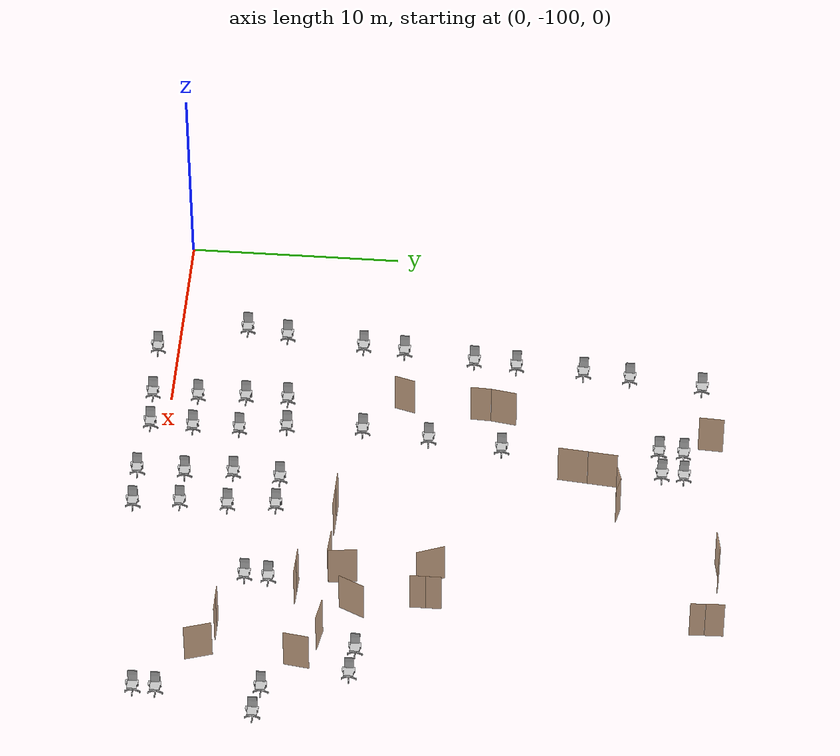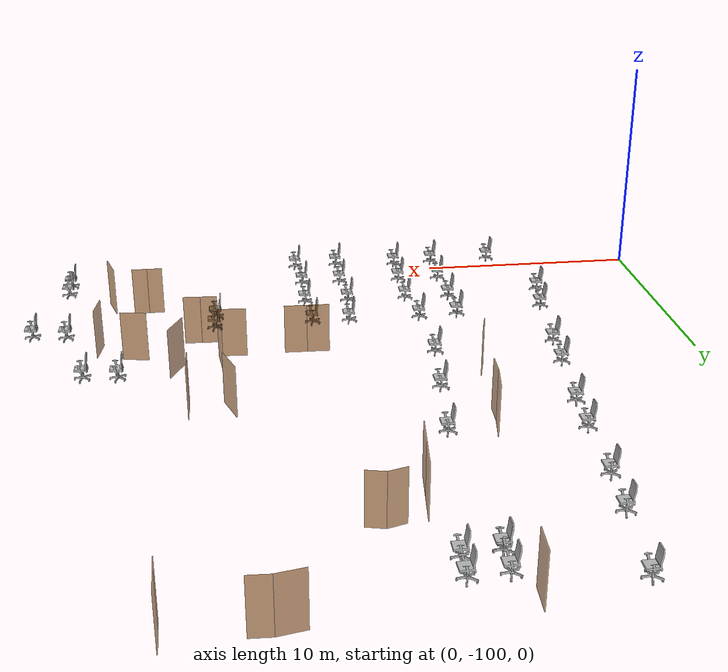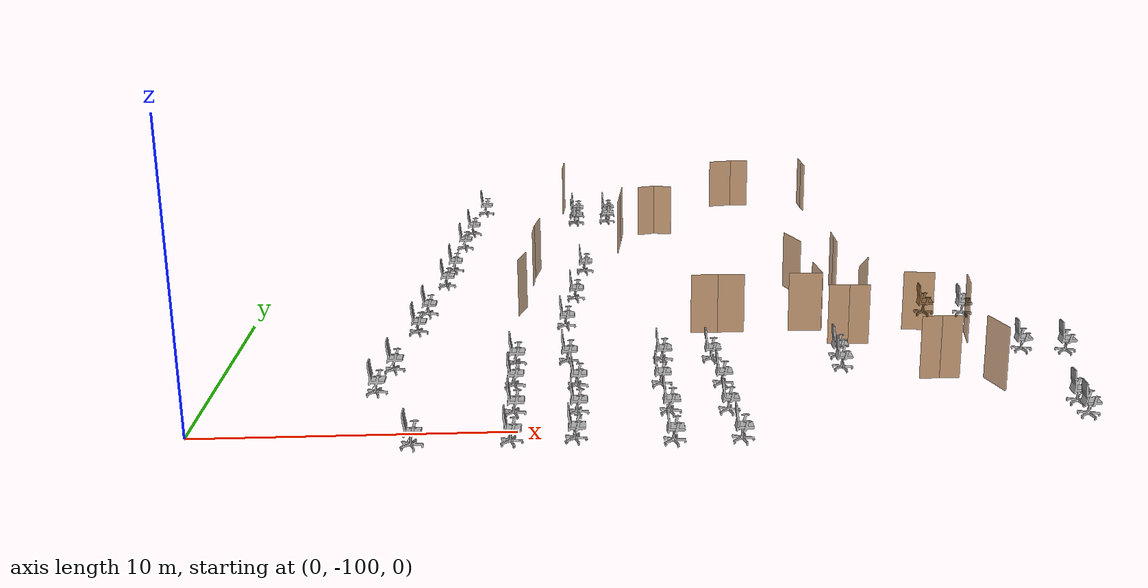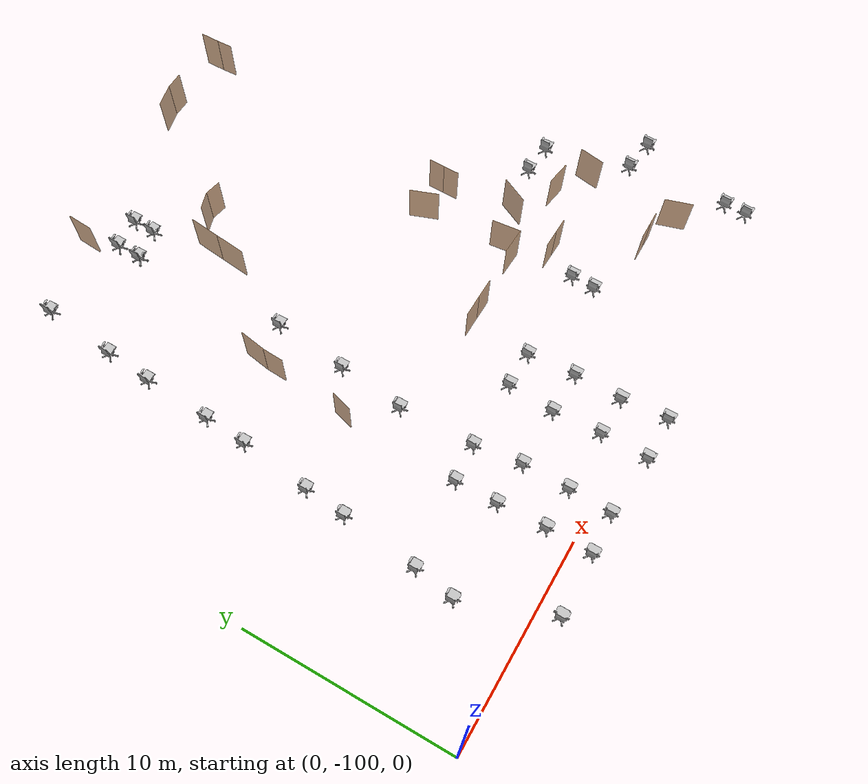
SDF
<sdf version="1.7">
 <world name="world">
  <include><uri>model://sun</uri></include>
  <include>
   <name>OpenRobotics/OfficeChairBlue</name>
   <uri>model://OfficeChairBlue</uri>
   <pose>25.026887193577952 -89.94243627777595 0.0 0 0 1.5708</pose>
   <static>True</static>
  </include>
  <include>
   <name>OpenRobotics/OfficeChairBlue_2</name>
   <uri>model://OfficeChairBlue</uri>
   <pose>26.47516021920883 -90.09647851929083 0.0 0 0 1.5708</pose>
   <static>True</static>
  </include>
  <include>
   <name>OpenRobotics/OfficeChairBlue_3</name>
   <uri>model://OfficeChairBlue</uri>
   <pose>27.569027678309006 -93.99444697364449 0.0 0 0 1.5708</pose>
   <static>True</static>
  </include>
  <include>
   <name>OpenRobotics/OfficeChairBlue_4</name>
   <uri>model://OfficeChairBlue</uri>
   <pose>29.063523231944025 -94.2255596136652 0.0 0 0 1.5708</pose>
   <static>True</static>
  </include>
  <include>
   <name>OpenRobotics/OfficeChairBlue_5</name>
   <uri>model://OfficeChairBlue</uri>
   <pose>21.02198602518487 -94.29513979441344 0.0 0 0 1.5708</pose>
   <static>True</static>
  </include>
  <include>
   <name>OpenRobotics/OfficeChairBlue_6</name>
   <uri>model://OfficeChairBlue</uri>
   <pose>20.958614840735695 -95.39413213934776 0.0 0 0 1.5708</pose>
   <static>True</static>
  </include>
  <include>
   <name>OpenRobotics/OfficeChairBlue_7</name>
   <uri>model://OfficeChairBlue</uri>
   <pose>27.95408400434778 -98.73338948228245 0.0 0 0 1.5708</pose>
   <static>True</static>
  </include>
  <include>
   <name>OpenRobotics/OfficeChairBlue_8</name>
   <uri>model://OfficeChairBlue</uri>
   <pose>27.95408400434778 -99.76891208727079 0.0 0 0 1.5708</pose>
   <static>True</static>
  </include>
  <include>
   <name>OpenRobotics/OfficeChairBlue_9</name>
   <uri>model://OfficeChairBlue</uri>
   <pose>16.91251747467581 -101.03229500088511 0.0 0 0 1.5708</pose>
   <static>True</static>
  </include>
  <include>
   <name>OpenRobotics/OfficeChairBlue_10</name>
   <uri>model://OfficeChairBlue</uri>
   <pose>14.84610437304923 -101.055751209126 0.0 0 0 1.5708</pose>
   <static>True</static>
  </include>
  <include>
   <name>OpenRobotics/OfficeChairBlue_11</name>
   <uri>model://OfficeChairBlue</uri>
   <pose>14.869560581290138 -98.82494753881946 0.0 0 0 1.5708</pose>
   <static>True</static>
  </include>
  <include>
   <name>OpenRobotics/OfficeChairBlue_12</name>
   <uri>model://OfficeChairBlue</uri>
   <pose>16.72467069775492 -98.84840374706036 0.0 0 0 1.5708</pose>
   <static>True</static>
  </include>
  <include>
   <name>OpenRobotics/OfficeChairBlue_13</name>
   <uri>model://OfficeChairBlue</uri>
   <pose>16.74822546149264 -96.61760007675379 0.0 0 0 1.5708</pose>
   <static>True</static>
  </include>
  <include>
   <name>OpenRobotics/OfficeChairBlue_14</name>
   <uri>model://OfficeChairBlue</uri>
   <pose>14.728626220851066 -96.54713289653425 0.0 0 0 1.5708</pose>
   <static>True</static>
  </include>
  <include>
   <name>OpenRobotics/OfficeChairBlue_15</name>
   <uri>model://OfficeChairBlue</uri>
   <pose>16.58383489281266 -94.36324164270951 0.0 0 0 1.5708</pose>
   <static>True</static>
  </include>
  <include>
   <name>OpenRobotics/OfficeChairBlue_16</name>
   <uri>model://OfficeChairBlue</uri>
   <pose>14.893016789531046 -94.33978543446861 0.0 0 0 1.5708</pose>
   <static>True</static>
  </include>
  <include>
   <name>OpenRobotics/OfficeChairBlue_17</name>
   <uri>model://OfficeChairBlue</uri>
   <pose>11.652413498903698 -94.31623067073089 0.0 0 0 1.5708</pose>
   <static>True</static>
  </include>
  <include>
   <name>OpenRobotics/OfficeChairBlue_18</name>
   <uri>model://OfficeChairBlue</uri>
   <pose>11.957738428022749 -96.54713289653425 0.0 0 0 1.5708</pose>
   <static>True</static>
  </include>
  <include>
   <name>OpenRobotics/OfficeChairBlue_19</name>
   <uri>model://OfficeChairBlue</uri>
   <pose>9.86777056265845 -94.43370882292905 0.0 0 0 1.5708</pose>
   <static>True</static>
  </include>
  <include>
   <name>OpenRobotics/OfficeChairBlue_20</name>
   <uri>model://OfficeChairBlue</uri>
   <pose>9.891226770899358 -96.42965474433609 0.0 0 0 1.5708</pose>
   <static>True</static>
  </include>
  <include>
   <name>OpenRobotics/OfficeChairBlue_21</name>
   <uri>model://OfficeChairBlue</uri>
   <pose>9.985150159359803 -98.70746938662128 0.0 0 0 1.5708</pose>
   <static>True</static>
  </include>
  <include>
   <name>OpenRobotics/OfficeChairBlue_22</name>
   <uri>model://OfficeChairBlue</uri>
   <pose>9.961693951118894 -100.86790443220512 0.0 0 0 1.5708</pose>
   <static>True</static>
  </include>
  <include>
   <name>OpenRobotics/OfficeChairBlue_23</name>
   <uri>model://OfficeChairBlue</uri>
   <pose>7.00286082587288 -100.96182782066556 0.0 0 0 1.5708</pose>
   <static>True</static>
  </include>
  <include>
   <name>OpenRobotics/OfficeChairBlue_24</name>
   <uri>model://OfficeChairBlue</uri>
   <pose>11.957738428022749 -98.7544803585999 0.0 0 0 1.5708</pose>
   <static>True</static>
  </include>
  <include>
   <name>OpenRobotics/OfficeChairBlue_25</name>
   <uri>model://OfficeChairBlue</uri>
   <pose>11.887271247803213 -100.77398104374467 0.0 0 0 1.5708</pose>
   <static>True</static>
  </include>
  <include>
   <name>OpenRobotics/OfficeChairBlue_26</name>
   <uri>model://OfficeChairBlue</uri>
   <pose>11.917232118833617 -87.58508734956467 0.0 0 0 1.5708</pose>
   <static>True</static>
  </include>
  <include>
   <name>OpenRobotics/OfficeChairBlue_27</name>
   <uri>model://OfficeChairBlue</uri>
   <pose>12.299824557452132 -84.11169597547084 0.0 0 0 1.5708</pose>
   <static>True</static>
  </include>
  <include>
   <name>OpenRobotics/OfficeChairBlue_28</name>
   <uri>model://OfficeChairBlue</uri>
   <pose>11.563910662767833 -90.7348224721327 0.0 0 0 1.5708</pose>
   <static>True</static>
  </include>
  <include>
   <name>OpenRobotics/OfficeChairBlue_29</name>
   <uri>model://OfficeChairBlue</uri>
   <pose>5.4331674281714175 -96.78258197841464 0.0 0 0 1.5708</pose>
   <static>True</static>
  </include>
  <include>
   <name>OpenRobotics/OfficeChairBlue_30</name>
   <uri>model://OfficeChairBlue</uri>
   <pose>5.781068331912622 -94.82911347613295 0.0 0 0 1.5708</pose>
   <static>True</static>
  </include>
  <include>
   <name>OpenRobotics/OfficeChairBlue_31</name>
   <uri>model://OfficeChairBlue</uri>
   <pose>6.209193410057606 -91.13623901064203 0.0 0 0 1.5708</pose>
   <static>True</static>
  </include>
  <include>
   <name>OpenRobotics/OfficeChairBlue_32</name>
   <uri>model://OfficeChairBlue</uri>
   <pose>6.396547409494441 -89.15596341322785 0.0 0 0 1.5708</pose>
   <static>True</static>
  </include>
  <include>
   <name>OpenRobotics/OfficeChairBlue_33</name>
   <uri>model://OfficeChairBlue</uri>
   <pose>6.797963948003768 -85.78418275634567 0.0 0 0 1.5708</pose>
   <static>True</static>
  </include>
  <include>
   <name>OpenRobotics/OfficeChairBlue_34</name>
   <uri>model://OfficeChairBlue</uri>
   <pose>6.958510852308137 -83.75039152416339 0.0 0 0 1.5708</pose>
   <static>True</static>
  </include>
  <include>
   <name>OpenRobotics/OfficeChairBlue_35</name>
   <uri>model://OfficeChairBlue</uri>
   <pose>7.145864851744972 -80.53915777158558 0.0 0 0 1.5708</pose>
   <static>True</static>
  </include>
  <include>
   <name>OpenRobotics/OfficeChairBlue_36</name>
   <uri>model://OfficeChairBlue</uri>
   <pose>7.359927390817464 -78.31811109546327 0.0 0 0 1.5708</pose>
   <static>True</static>
  </include>
  <include>
   <name>OpenRobotics/OfficeChairBlue_37</name>
   <uri>model://OfficeChairBlue</uri>
   <pose>7.734536834194324 -74.8660077086805 0.0 0 0 1.5708</pose>
   <static>True</static>
  </include>
  <include>
   <name>OpenRobotics/OfficeChairBlue_62</name>
   <uri>model://OfficeChairBlue</uri>
   <pose>13.407982563589837 -75.48651311659965 0.0 0 0 1.6053</pose>
   <static>True</static>
  </include>
  <include>
   <name>OpenRobotics/OfficeChairBlue_63</name>
   <uri>model://OfficeChairBlue</uri>
   <pose>13.378810136533916 -76.52242994357525 0.0 0 0 1.5708</pose>
   <static>True</static>
  </include>
  <include>
   <name>OpenRobotics/OfficeChairBlue_64</name>
   <uri>model://OfficeChairBlue</uri>
   <pose>11.992725629390492 -75.55944418423945 0.0 0 0 1.5708</pose>
   <static>True</static>
  </include>
  <include>
   <name>OpenRobotics/OfficeChairBlue_65</name>
   <uri>model://OfficeChairBlue</uri>
   <pose>11.9488684333098 -76.71214927493553 0.0 0 0 1.5708</pose>
   <static>True</static>
  </include>
  <include>
   <name>OpenRobotics/OfficeChairBlue_66</name>
   <uri>model://OfficeChairBlue</uri>
   <pose>11.96345464683776 -76.72673548846349 0.0 0 0 1.5708</pose>
   <static>True</static>
  </include>
  <model name="double_hinged">
   <pose>21.482732972774144 -92.93536960491842 0.0 0 0 3.0999947517537927</pose>
   <link name="right">
    <pose>0.3673384428420449 0 1.11 0 0 0</pose>
    <visual name="right_visual">
     <geometry><box><size>0.7246768856840898 0.03 2.2</size></box></geometry>
     <material><ambient>0.5 0.25 0 0.6</ambient><diffuse>0.5 0.25 0 0.6</diffuse></material>
    </visual>
    <collision name="right_collision">
     <geometry><box><size>0.7246768856840898 0.03 2.2</size></box></geometry>
     <surface><contact><collide_bitmask>0x02</collide_bitmask></contact></surface>
    </collision>
    <inertial>
     <mass>50.0</mass>
     <inertia><ixx>20.17041666666667</ixx><iyy>22.3548191193533</iyy><izz>2.191902452686631</izz></inertia>
    </inertial>
   </link>
   <joint name="right_joint" type="revolute">
    <parent>world</parent>
    <child>right</child>
    <axis><xyz>0 0 -1</xyz><limit><lower>0</lower><upper>1.57</upper></limit></axis>
    <pose>0.3673384428420449 0 0 0 0 0</pose>
   </joint>
   <link name="left">
    <pose>-0.3673384428420449 0 1.11 0 0 0</pose>
    <visual name="left_visual">
     <geometry><box><size>0.7246768856840898 0.03 2.2</size></box></geometry>
     <material><ambient>0.5 0.25 0 0.6</ambient><diffuse>0.5 0.25 0 0.6</diffuse></material>
    </visual>
    <collision name="left_collision">
     <geometry><box><size>0.7246768856840898 0.03 2.2</size></box></geometry>
     <surface><contact><collide_bitmask>0x02</collide_bitmask></contact></surface>
    </collision>
    <inertial>
     <mass>50.0</mass>
     <inertia><ixx>20.17041666666667</ixx><iyy>22.3548191193533</iyy><izz>2.191902452686631</izz></inertia>
    </inertial>
   </link>
   <joint name="left_joint" type="revolute">
    <parent>world</parent>
    <child>left</child>
    <axis><xyz>0 0 -1</xyz><limit><lower>-1.57</lower><upper>0</upper></limit></axis>
    <pose>-0.3673384428420449 0 0 0 0 0</pose>
   </joint>
   <plugin name="door" filename="libdoor.so">
    <v_max_door>0.5</v_max_door>
    <a_max_door>0.3</a_max_door>
    <a_nom_door>0.15</a_nom_door>
    <dx_min_door>0.01</dx_min_door>
    <f_max_door>500.0</f_max_door>
    <door name="double_hinged" type="DoubleSwingDoor" left_joint_name="left_joint" right_joint_name="right_joint"/>
   </plugin>
  </model>
  <model name="door_0">
   <pose>20.145088492313096 -91.51119339825772 0.0 0 0 3.0845559447910613</pose>
   <link name="right">
    <pose>0 0 1.11 0 0 0</pose>
    <visual name="right_visual">
     <geometry><box><size>1.2019366277025911 0.03 2.2</size></box></geometry>
     <material><ambient>0.5 0.25 0 0.6</ambient><diffuse>0.5 0.25 0 0.6</diffuse></material>
    </visual>
    <collision name="right_collision">
     <geometry><box><size>1.2019366277025911 0.03 2.2</size></box></geometry>
     <surface><contact><collide_bitmask>0x02</collide_bitmask></contact></surface>
    </collision>
    <inertial>
     <mass>50.0</mass>
     <inertia><ixx>20.17041666666667</ixx><iyy>26.186048570887827</iyy><izz>6.023131904221155</izz></inertia>
    </inertial>
   </link>
   <joint name="right_joint" type="revolute">
    <parent>world</parent>
    <child>right</child>
    <axis><xyz>0 0 -1</xyz><limit><lower>0</lower><upper>1.57</upper></limit></axis>
    <pose>0.6059683138512956 0 0 0 0 0</pose>
   </joint>
   <plugin name="door" filename="libdoor.so">
    <v_max_door>0.5</v_max_door>
    <a_max_door>0.3</a_max_door>
    <a_nom_door>0.15</a_nom_door>
    <dx_min_door>0.01</dx_min_door>
    <f_max_door>500.0</f_max_door>
    <door name="door_0" type="SwingDoor" left_joint_name="empty_joint" right_joint_name="right_joint"/>
   </plugin>
  </model>
  <model name="double_hinged_0">
   <pose>16.94720900955312 -91.51981700422866 0.0 0 0 3.1148224264349946</pose>
   <link name="right">
    <pose>0.4841795269092865 0 1.11 0 0 0</pose>
    <visual name="right_visual">
     <geometry><box><size>0.958359053818573 0.03 2.2</size></box></geometry>
     <material><ambient>0.5 0.25 0 0.6</ambient><diffuse>0.5 0.25 0 0.6</diffuse></material>
    </visual>
    <collision name="right_collision">
     <geometry><box><size>0.958359053818573 0.03 2.2</size></box></geometry>
     <surface><contact><collide_bitmask>0x02</collide_bitmask></contact></surface>
    </collision>
    <inertial>
     <mass>50.0</mass>
     <inertia><ixx>20.17041666666667</ixx><iyy>23.993550316816798</iyy><izz>3.8306336501501277</izz></inertia>
    </inertial>
   </link>
   <joint name="right_joint" type="revolute">
    <parent>world</parent>
    <child>right</child>
    <axis><xyz>0 0 -1</xyz><limit><lower>0</lower><upper>1.57</upper></limit></axis>
    <pose>0.4841795269092865 0 0 0 0 0</pose>
   </joint>
   <link name="left">
    <pose>-0.4841795269092865 0 1.11 0 0 0</pose>
    <visual name="left_visual">
     <geometry><box><size>0.958359053818573 0.03 2.2</size></box></geometry>
     <material><ambient>0.5 0.25 0 0.6</ambient><diffuse>0.5 0.25 0 0.6</diffuse></material>
    </visual>
    <collision name="left_collision">
     <geometry><box><size>0.958359053818573 0.03 2.2</size></box></geometry>
     <surface><contact><collide_bitmask>0x02</collide_bitmask></contact></surface>
    </collision>
    <inertial>
     <mass>50.0</mass>
     <inertia><ixx>20.17041666666667</ixx><iyy>23.993550316816798</iyy><izz>3.8306336501501277</izz></inertia>
    </inertial>
   </link>
   <joint name="left_joint" type="revolute">
    <parent>world</parent>
    <child>left</child>
    <axis><xyz>0 0 -1</xyz><limit><lower>-1.57</lower><upper>0</upper></limit></axis>
    <pose>-0.4841795269092865 0 0 0 0 0</pose>
   </joint>
   <plugin name="door" filename="libdoor.so">
    <v_max_door>0.5</v_max_door>
    <a_max_door>0.3</a_max_door>
    <a_nom_door>0.15</a_nom_door>
    <dx_min_door>0.01</dx_min_door>
    <f_max_door>500.0</f_max_door>
    <door name="double_hinged_0" type="DoubleSwingDoor" left_joint_name="left_joint" right_joint_name="right_joint"/>
   </plugin>
  </model>
  <model name="door_1">
   <pose>25.852585145856654 -92.53755034204269 0.0 0 0 -1.718508692212317</pose>
   <link name="right">
    <pose>0 0 1.11 0 0 0</pose>
    <visual name="right_visual">
     <geometry><box><size>1.1859854913539698 0.03 2.2</size></box></geometry>
     <material><ambient>0.5 0.25 0 0.6</ambient><diffuse>0.5 0.25 0 0.6</diffuse></material>
    </visual>
    <collision name="right_collision">
     <geometry><box><size>1.1859854913539698 0.03 2.2</size></box></geometry>
     <surface><contact><collide_bitmask>0x02</collide_bitmask></contact></surface>
    </collision>
    <inertial>
     <mass>50.0</mass>
     <inertia><ixx>20.17041666666667</ixx><iyy>26.02733994042549</iyy><izz>5.864423273758821</izz></inertia>
    </inertial>
   </link>
   <joint name="right_joint" type="revolute">
    <parent>world</parent>
    <child>right</child>
    <axis><xyz>0 0 -1</xyz><limit><lower>0</lower><upper>1.57</upper></limit></axis>
    <pose>0.5979927456769849 0 0 0 0 0</pose>
   </joint>
   <plugin name="door" filename="libdoor.so">
    <v_max_door>0.5</v_max_door>
    <a_max_door>0.3</a_max_door>
    <a_nom_door>0.15</a_nom_door>
    <dx_min_door>0.01</dx_min_door>
    <f_max_door>500.0</f_max_door>
    <door name="door_1" type="SwingDoor" left_joint_name="empty_joint" right_joint_name="right_joint"/>
   </plugin>
  </model>
  <model name="door_2">
   <pose>24.274958030661942 -91.62532066356432 0.0 0 0 -0.17375481483054908</pose>
   <link name="right">
    <pose>0 0 1.11 0 0 0</pose>
    <visual name="right_visual">
     <geometry><box><size>1.110196057926536 0.03 2.2</size></box></geometry>
     <material><ambient>0.5 0.25 0 0.6</ambient><diffuse>0.5 0.25 0 0.6</diffuse></material>
    </visual>
    <collision name="right_collision">
     <geometry><box><size>1.110196057926536 0.03 2.2</size></box></geometry>
     <surface><contact><collide_bitmask>0x02</collide_bitmask></contact></surface>
    </collision>
    <inertial>
     <mass>50.0</mass>
     <inertia><ixx>20.17041666666667</ixx><iyy>25.302230362648423</iyy><izz>5.139313695981751</izz></inertia>
    </inertial>
   </link>
   <joint name="right_joint" type="revolute">
    <parent>world</parent>
    <child>right</child>
    <axis><xyz>0 0 -1</xyz><limit><lower>0</lower><upper>1.57</upper></limit></axis>
    <pose>0.560098028963268 0 0 0 0 0</pose>
   </joint>
   <plugin name="door" filename="libdoor.so">
    <v_max_door>0.5</v_max_door>
    <a_max_door>0.3</a_max_door>
    <a_nom_door>0.15</a_nom_door>
    <dx_min_door>0.01</dx_min_door>
    <f_max_door>500.0</f_max_door>
    <door name="door_2" type="SwingDoor" left_joint_name="empty_joint" right_joint_name="right_joint"/>
   </plugin>
  </model>
  <model name="double_hinged_1">
   <pose>23.939672230512485 -96.37101422373384 0.0 0 0 3.141592653589793</pose>
   <link name="right">
    <pose>0.34151943532272266 0 1.11 0 0 0</pose>
    <visual name="right_visual">
     <geometry><box><size>0.6730388706454453 0.03 2.2</size></box></geometry>
     <material><ambient>0.5 0.25 0 0.6</ambient><diffuse>0.5 0.25 0 0.6</diffuse></material>
    </visual>
    <collision name="right_collision">
     <geometry><box><size>0.6730388706454453 0.03 2.2</size></box></geometry>
     <surface><contact><collide_bitmask>0x02</collide_bitmask></contact></surface>
    </collision>
    <inertial>
     <mass>50.0</mass>
     <inertia><ixx>20.17041666666667</ixx><iyy>22.054088839165406</iyy><izz>1.8911721724987356</izz></inertia>
    </inertial>
   </link>
   <joint name="right_joint" type="revolute">
    <parent>world</parent>
    <child>right</child>
    <axis><xyz>0 0 -1</xyz><limit><lower>0</lower><upper>1.57</upper></limit></axis>
    <pose>0.34151943532272266 0 0 0 0 0</pose>
   </joint>
   <link name="left">
    <pose>-0.34151943532272266 0 1.11 0 0 0</pose>
    <visual name="left_visual">
     <geometry><box><size>0.6730388706454453 0.03 2.2</size></box></geometry>
     <material><ambient>0.5 0.25 0 0.6</ambient><diffuse>0.5 0.25 0 0.6</diffuse></material>
    </visual>
    <collision name="left_collision">
     <geometry><box><size>0.6730388706454453 0.03 2.2</size></box></geometry>
     <surface><contact><collide_bitmask>0x02</collide_bitmask></contact></surface>
    </collision>
    <inertial>
     <mass>50.0</mass>
     <inertia><ixx>20.17041666666667</ixx><iyy>22.054088839165406</iyy><izz>1.8911721724987356</izz></inertia>
    </inertial>
   </link>
   <joint name="left_joint" type="revolute">
    <parent>world</parent>
    <child>left</child>
    <axis><xyz>0 0 -1</xyz><limit><lower>-1.57</lower><upper>0</upper></limit></axis>
    <pose>-0.34151943532272266 0 0 0 0 0</pose>
   </joint>
   <plugin name="door" filename="libdoor.so">
    <v_max_door>0.5</v_max_door>
    <a_max_door>0.3</a_max_door>
    <a_nom_door>0.15</a_nom_door>
    <dx_min_door>0.01</dx_min_door>
    <f_max_door>500.0</f_max_door>
    <door name="double_hinged_1" type="DoubleSwingDoor" left_joint_name="left_joint" right_joint_name="right_joint"/>
   </plugin>
  </model>
  <model name="door_3">
   <pose>20.675464898399014 -90.87536261058452 0.0 0 0 -1.4599616146991061</pose>
   <link name="right">
    <pose>0 0 1.11 0 0 0</pose>
    <visual name="right_visual">
     <geometry><box><size>1.3390264451191436 0.03 2.2</size></box></geometry>
     <material><ambient>0.5 0.25 0 0.6</ambient><diffuse>0.5 0.25 0 0.6</diffuse></material>
    </visual>
    <collision name="right_collision">
     <geometry><box><size>1.3390264451191436 0.03 2.2</size></box></geometry>
     <surface><contact><collide_bitmask>0x02</collide_bitmask></contact></surface>
    </collision>
    <inertial>
     <mass>50.0</mass>
     <inertia><ixx>20.17041666666667</ixx><iyy>27.637465919701718</iyy><izz>7.474549253035045</izz></inertia>
    </inertial>
   </link>
   <joint name="right_joint" type="revolute">
    <parent>world</parent>
    <child>right</child>
    <axis><xyz>0 0 -1</xyz><limit><lower>0</lower><upper>1.57</upper></limit></axis>
    <pose>0.6745132225595718 0 0 0 0 0</pose>
   </joint>
   <plugin name="door" filename="libdoor.so">
    <v_max_door>0.5</v_max_door>
    <a_max_door>0.3</a_max_door>
    <a_nom_door>0.15</a_nom_door>
    <dx_min_door>0.01</dx_min_door>
    <f_max_door>500.0</f_max_door>
    <door name="door_3" type="SwingDoor" left_joint_name="empty_joint" right_joint_name="right_joint"/>
   </plugin>
  </model>
  <model name="door_4">
   <pose>22.488146873486862 -90.3177848873789 0.0 0 0 1.125506017374819</pose>
   <link name="right">
    <pose>0 0 1.11 0 0 0</pose>
    <visual name="right_visual">
     <geometry><box><size>1.3082075382505207 0.03 2.2</size></box></geometry>
     <material><ambient>0.5 0.25 0 0.6</ambient><diffuse>0.5 0.25 0 0.6</diffuse></material>
    </visual>
    <collision name="right_collision">
     <geometry><box><size>1.3082075382505207 0.03 2.2</size></box></geometry>
     <surface><contact><collide_bitmask>0x02</collide_bitmask></contact></surface>
    </collision>
    <inertial>
     <mass>50.0</mass>
     <inertia><ixx>20.17041666666667</ixx><iyy>27.297529013064533</iyy><izz>7.134612346397865</izz></inertia>
    </inertial>
   </link>
   <joint name="right_joint" type="revolute">
    <parent>world</parent>
    <child>right</child>
    <axis><xyz>0 0 -1</xyz><limit><lower>0</lower><upper>1.57</upper></limit></axis>
    <pose>0.6591037691252604 0 0 0 0 0</pose>
   </joint>
   <plugin name="door" filename="libdoor.so">
    <v_max_door>0.5</v_max_door>
    <a_max_door>0.3</a_max_door>
    <a_nom_door>0.15</a_nom_door>
    <dx_min_door>0.01</dx_min_door>
    <f_max_door>500.0</f_max_door>
    <door name="door_4" type="SwingDoor" left_joint_name="empty_joint" right_joint_name="right_joint"/>
   </plugin>
  </model>
  <model name="double_hinged_2">
   <pose>21.96082568780207 -86.96487760813594 0.0 0 0 1.5707963267948966</pose>
   <link name="right">
    <pose>0.3650495601862396 0 1.11 0 0 0</pose>
    <visual name="right_visual">
     <geometry><box><size>0.7200991203724791 0.03 2.2</size></box></geometry>
     <material><ambient>0.5 0.25 0 0.6</ambient><diffuse>0.5 0.25 0 0.6</diffuse></material>
    </visual>
    <collision name="right_collision">
     <geometry><box><size>0.7200991203724791 0.03 2.2</size></box></geometry>
     <surface><contact><collide_bitmask>0x02</collide_bitmask></contact></surface>
    </collision>
    <inertial>
     <mass>50.0</mass>
     <inertia><ixx>20.17041666666667</ixx><iyy>22.327261429838412</iyy><izz>2.1643447631717425</izz></inertia>
    </inertial>
   </link>
   <joint name="right_joint" type="revolute">
    <parent>world</parent>
    <child>right</child>
    <axis><xyz>0 0 -1</xyz><limit><lower>0</lower><upper>1.57</upper></limit></axis>
    <pose>0.3650495601862396 0 0 0 0 0</pose>
   </joint>
   <link name="left">
    <pose>-0.3650495601862396 0 1.11 0 0 0</pose>
    <visual name="left_visual">
     <geometry><box><size>0.7200991203724791 0.03 2.2</size></box></geometry>
     <material><ambient>0.5 0.25 0 0.6</ambient><diffuse>0.5 0.25 0 0.6</diffuse></material>
    </visual>
    <collision name="left_collision">
     <geometry><box><size>0.7200991203724791 0.03 2.2</size></box></geometry>
     <surface><contact><collide_bitmask>0x02</collide_bitmask></contact></surface>
    </collision>
    <inertial>
     <mass>50.0</mass>
     <inertia><ixx>20.17041666666667</ixx><iyy>22.327261429838412</iyy><izz>2.1643447631717425</izz></inertia>
    </inertial>
   </link>
   <joint name="left_joint" type="revolute">
    <parent>world</parent>
    <child>left</child>
    <axis><xyz>0 0 -1</xyz><limit><lower>-1.57</lower><upper>0</upper></limit></axis>
    <pose>-0.3650495601862396 0 0 0 0 0</pose>
   </joint>
   <plugin name="door" filename="libdoor.so">
    <v_max_door>0.5</v_max_door>
    <a_max_door>0.3</a_max_door>
    <a_nom_door>0.15</a_nom_door>
    <dx_min_door>0.01</dx_min_door>
    <f_max_door>500.0</f_max_door>
    <door name="double_hinged_2" type="DoubleSwingDoor" left_joint_name="left_joint" right_joint_name="right_joint"/>
   </plugin>
  </model>
  <model name="door_5">
   <pose>20.333280213472825 -86.8522779530299 0.0 0 0 1.924689928756783</pose>
   <link name="right">
    <pose>0 0 1.11 0 0 0</pose>
    <visual name="right_visual">
     <geometry><box><size>1.3641635896445348 0.03 2.2</size></box></geometry>
     <material><ambient>0.5 0.25 0 0.6</ambient><diffuse>0.5 0.25 0 0.6</diffuse></material>
    </visual>
    <collision name="right_collision">
     <geometry><box><size>1.3641635896445348 0.03 2.2</size></box></geometry>
     <surface><contact><collide_bitmask>0x02</collide_bitmask></contact></surface>
    </collision>
    <inertial>
     <mass>50.0</mass>
     <inertia><ixx>20.17041666666667</ixx><iyy>27.920592913799435</iyy><izz>7.757676247132761</izz></inertia>
    </inertial>
   </link>
   <joint name="right_joint" type="revolute">
    <parent>world</parent>
    <child>right</child>
    <axis><xyz>0 0 -1</xyz><limit><lower>0</lower><upper>1.57</upper></limit></axis>
    <pose>0.6870817948222674 0 0 0 0 0</pose>
   </joint>
   <plugin name="door" filename="libdoor.so">
    <v_max_door>0.5</v_max_door>
    <a_max_door>0.3</a_max_door>
    <a_nom_door>0.15</a_nom_door>
    <dx_min_door>0.01</dx_min_door>
    <f_max_door>500.0</f_max_door>
    <door name="door_5" type="SwingDoor" left_joint_name="empty_joint" right_joint_name="right_joint"/>
   </plugin>
  </model>
  <model name="door_6">
   <pose>9.813466483915843 -88.85763592438235 0.0 0 0 -1.8484706970252343</pose>
   <link name="right">
    <pose>0 0 1.11 0 0 0</pose>
    <visual name="right_visual">
     <geometry><box><size>0.9859101175697501 0.03 2.2</size></box></geometry>
     <material><ambient>0.5 0.25 0 0.6</ambient><diffuse>0.5 0.25 0 0.6</diffuse></material>
    </visual>
    <collision name="right_collision">
     <geometry><box><size>0.9859101175697501 0.03 2.2</size></box></geometry>
     <surface><contact><collide_bitmask>0x02</collide_bitmask></contact></surface>
    </collision>
    <inertial>
     <mass>50.0</mass>
     <inertia><ixx>20.17041666666667</ixx><iyy>24.216744833026667</iyy><izz>4.053828166359994</izz></inertia>
    </inertial>
   </link>
   <joint name="right_joint" type="revolute">
    <parent>world</parent>
    <child>right</child>
    <axis><xyz>0 0 -1</xyz><limit><lower>0</lower><upper>1.57</upper></limit></axis>
    <pose>0.49795505878487506 0 0 0 0 0</pose>
   </joint>
   <plugin name="door" filename="libdoor.so">
    <v_max_door>0.5</v_max_door>
    <a_max_door>0.3</a_max_door>
    <a_nom_door>0.15</a_nom_door>
    <dx_min_door>0.01</dx_min_door>
    <f_max_door>500.0</f_max_door>
    <door name="door_6" type="SwingDoor" left_joint_name="empty_joint" right_joint_name="right_joint"/>
   </plugin>
  </model>
  <model name="door_7">
   <pose>10.148850839562108 -85.240944857926 0.0 0 0 -1.616173629205013</pose>
   <link name="right">
    <pose>0 0 1.11 0 0 0</pose>
    <visual name="right_visual">
     <geometry><box><size>0.9633504723619163 0.03 2.2</size></box></geometry>
     <material><ambient>0.5 0.25 0 0.6</ambient><diffuse>0.5 0.25 0 0.6</diffuse></material>
    </visual>
    <collision name="right_collision">
     <geometry><box><size>0.9633504723619163 0.03 2.2</size></box></geometry>
     <surface><contact><collide_bitmask>0x02</collide_bitmask></contact></surface>
    </collision>
    <inertial>
     <mass>50.0</mass>
     <inertia><ixx>20.17041666666667</ixx><iyy>24.03351721916637</iyy><izz>3.870600552499697</izz></inertia>
    </inertial>
   </link>
   <joint name="right_joint" type="revolute">
    <parent>world</parent>
    <child>right</child>
    <axis><xyz>0 0 -1</xyz><limit><lower>0</lower><upper>1.57</upper></limit></axis>
    <pose>0.48667523618095815 0 0 0 0 0</pose>
   </joint>
   <plugin name="door" filename="libdoor.so">
    <v_max_door>0.5</v_max_door>
    <a_max_door>0.3</a_max_door>
    <a_nom_door>0.15</a_nom_door>
    <dx_min_door>0.01</dx_min_door>
    <f_max_door>500.0</f_max_door>
    <door name="door_7" type="SwingDoor" left_joint_name="empty_joint" right_joint_name="right_joint"/>
   </plugin>
  </model>
  <model name="door_8">
   <pose>10.270369767129505 -84.14712667657422 0.0 0 0 -1.7330109565266234</pose>
   <link name="right">
    <pose>0 0 1.11 0 0 0</pose>
    <visual name="right_visual">
     <geometry><box><size>1.2214543243087839 0.03 2.2</size></box></geometry>
     <material><ambient>0.5 0.25 0 0.6</ambient><diffuse>0.5 0.25 0 0.6</diffuse></material>
    </visual>
    <collision name="right_collision">
     <geometry><box><size>1.2214543243087839 0.03 2.2</size></box></geometry>
     <surface><contact><collide_bitmask>0x02</collide_bitmask></contact></surface>
    </collision>
    <inertial>
     <mass>50.0</mass>
     <inertia><ixx>20.17041666666667</ixx><iyy>26.383127776552623</iyy><izz>6.220211109885949</izz></inertia>
    </inertial>
   </link>
   <joint name="right_joint" type="revolute">
    <parent>world</parent>
    <child>right</child>
    <axis><xyz>0 0 -1</xyz><limit><lower>0</lower><upper>1.57</upper></limit></axis>
    <pose>0.6157271621543919 0 0 0 0 0</pose>
   </joint>
   <plugin name="door" filename="libdoor.so">
    <v_max_door>0.5</v_max_door>
    <a_max_door>0.3</a_max_door>
    <a_nom_door>0.15</a_nom_door>
    <dx_min_door>0.01</dx_min_door>
    <f_max_door>500.0</f_max_door>
    <door name="door_8" type="SwingDoor" left_joint_name="empty_joint" right_joint_name="right_joint"/>
   </plugin>
  </model>
  <model name="double_hinged_3">
   <pose>13.78081800802411 -79.99665903939197 0.0 0 0 1.4706361179572767</pose>
   <link name="right">
    <pose>0.7032439357538731 0 1.11 0 0 0</pose>
    <visual name="right_visual">
     <geometry><box><size>1.3964878715077462 0.03 2.2</size></box></geometry>
     <material><ambient>0.5 0.25 0 0.6</ambient><diffuse>0.5 0.25 0 0.6</diffuse></material>
    </visual>
    <collision name="right_collision">
     <geometry><box><size>1.3964878715077462 0.03 2.2</size></box></geometry>
     <surface><contact><collide_bitmask>0x02</collide_bitmask></contact></surface>
    </collision>
    <inertial>
     <mass>50.0</mass>
     <inertia><ixx>20.17041666666667</ixx><iyy>28.292409896950986</iyy><izz>8.129493230284314</izz></inertia>
    </inertial>
   </link>
   <joint name="right_joint" type="revolute">
    <parent>world</parent>
    <child>right</child>
    <axis><xyz>0 0 -1</xyz><limit><lower>0</lower><upper>1.57</upper></limit></axis>
    <pose>0.7032439357538731 0 0 0 0 0</pose>
   </joint>
   <link name="left">
    <pose>-0.7032439357538731 0 1.11 0 0 0</pose>
    <visual name="left_visual">
     <geometry><box><size>1.3964878715077462 0.03 2.2</size></box></geometry>
     <material><ambient>0.5 0.25 0 0.6</ambient><diffuse>0.5 0.25 0 0.6</diffuse></material>
    </visual>
    <collision name="left_collision">
     <geometry><box><size>1.3964878715077462 0.03 2.2</size></box></geometry>
     <surface><contact><collide_bitmask>0x02</collide_bitmask></contact></surface>
    </collision>
    <inertial>
     <mass>50.0</mass>
     <inertia><ixx>20.17041666666667</ixx><iyy>28.292409896950986</iyy><izz>8.129493230284314</izz></inertia>
    </inertial>
   </link>
   <joint name="left_joint" type="revolute">
    <parent>world</parent>
    <child>left</child>
    <axis><xyz>0 0 -1</xyz><limit><lower>-1.57</lower><upper>0</upper></limit></axis>
    <pose>-0.7032439357538731 0 0 0 0 0</pose>
   </joint>
   <plugin name="door" filename="libdoor.so">
    <v_max_door>0.5</v_max_door>
    <a_max_door>0.3</a_max_door>
    <a_nom_door>0.15</a_nom_door>
    <dx_min_door>0.01</dx_min_door>
    <f_max_door>500.0</f_max_door>
    <door name="double_hinged_3" type="DoubleSwingDoor" left_joint_name="left_joint" right_joint_name="right_joint"/>
   </plugin>
  </model>
  <model name="door_9">
   <pose>15.730984901162657 -78.47304033644943 0.0 0 0 2.912726429393837</pose>
   <link name="right">
    <pose>0 0 1.11 0 0 0</pose>
    <visual name="right_visual">
     <geometry><box><size>0.7510816710424599 0.03 2.2</size></box></geometry>
     <material><ambient>0.5 0.25 0 0.6</ambient><diffuse>0.5 0.25 0 0.6</diffuse></material>
    </visual>
    <collision name="right_collision">
     <geometry><box><size>0.7510816710424599 0.03 2.2</size></box></geometry>
     <surface><contact><collide_bitmask>0x02</collide_bitmask></contact></surface>
    </collision>
    <inertial>
     <mass>50.0</mass>
     <inertia><ixx>20.17041666666667</ixx><iyy>22.517181985733064</iyy><izz>2.354265319066392</izz></inertia>
    </inertial>
   </link>
   <joint name="right_joint" type="revolute">
    <parent>world</parent>
    <child>right</child>
    <axis><xyz>0 0 -1</xyz><limit><lower>0</lower><upper>1.57</upper></limit></axis>
    <pose>0.38054083552122997 0 0 0 0 0</pose>
   </joint>
   <plugin name="door" filename="libdoor.so">
    <v_max_door>0.5</v_max_door>
    <a_max_door>0.3</a_max_door>
    <a_nom_door>0.15</a_nom_door>
    <dx_min_door>0.01</dx_min_door>
    <f_max_door>500.0</f_max_door>
    <door name="door_9" type="SwingDoor" left_joint_name="empty_joint" right_joint_name="right_joint"/>
   </plugin>
  </model>
  <model name="door_10">
   <pose>14.991867952832017 -78.49196299183706 0.0 0 0 -2.8633636434948095</pose>
   <link name="right">
    <pose>0 0 1.11 0 0 0</pose>
    <visual name="right_visual">
     <geometry><box><size>0.7564740254210977 0.03 2.2</size></box></geometry>
     <material><ambient>0.5 0.25 0 0.6</ambient><diffuse>0.5 0.25 0 0.6</diffuse></material>
    </visual>
    <collision name="right_collision">
     <geometry><box><size>0.7564740254210977 0.03 2.2</size></box></geometry>
     <surface><contact><collide_bitmask>0x02</collide_bitmask></contact></surface>
    </collision>
    <inertial>
     <mass>50.0</mass>
     <inertia><ixx>20.17041666666667</ixx><iyy>22.55105396307</iyy><izz>2.3881372964033316</izz></inertia>
    </inertial>
   </link>
   <joint name="right_joint" type="revolute">
    <parent>world</parent>
    <child>right</child>
    <axis><xyz>0 0 -1</xyz><limit><lower>0</lower><upper>1.57</upper></limit></axis>
    <pose>0.38323701271054883 0 0 0 0 0</pose>
   </joint>
   <plugin name="door" filename="libdoor.so">
    <v_max_door>0.5</v_max_door>
    <a_max_door>0.3</a_max_door>
    <a_nom_door>0.15</a_nom_door>
    <dx_min_door>0.01</dx_min_door>
    <f_max_door>500.0</f_max_door>
    <door name="door_10" type="SwingDoor" left_joint_name="empty_joint" right_joint_name="right_joint"/>
   </plugin>
  </model>
  <model name="door_11">
   <pose>18.784825525334032 -73.74267215603396 0.0 0 0 -2.957990487247626</pose>
   <link name="right">
    <pose>0 0 1.11 0 0 0</pose>
    <visual name="right_visual">
     <geometry><box><size>1.019969019611983 0.03 2.2</size></box></geometry>
     <material><ambient>0.5 0.25 0 0.6</ambient><diffuse>0.5 0.25 0 0.6</diffuse></material>
    </visual>
    <collision name="right_collision">
     <geometry><box><size>1.019969019611983 0.03 2.2</size></box></geometry>
     <surface><contact><collide_bitmask>0x02</collide_bitmask></contact></surface>
    </collision>
    <inertial>
     <mass>50.0</mass>
     <inertia><ixx>20.17041666666667</ixx><iyy>24.501403337367627</iyy><izz>4.3384866707009575</izz></inertia>
    </inertial>
   </link>
   <joint name="right_joint" type="revolute">
    <parent>world</parent>
    <child>right</child>
    <axis><xyz>0 0 -1</xyz><limit><lower>0</lower><upper>1.57</upper></limit></axis>
    <pose>0.5149845098059915 0 0 0 0 0</pose>
   </joint>
   <plugin name="door" filename="libdoor.so">
    <v_max_door>0.5</v_max_door>
    <a_max_door>0.3</a_max_door>
    <a_nom_door>0.15</a_nom_door>
    <dx_min_door>0.01</dx_min_door>
    <f_max_door>500.0</f_max_door>
    <door name="door_11" type="SwingDoor" left_joint_name="empty_joint" right_joint_name="right_joint"/>
   </plugin>
  </model>
  <model name="door_12">
   <pose>19.694788427385745 -73.66619309050898 0.0 0 0 3.09815765232221</pose>
   <link name="right">
    <pose>0 0 1.11 0 0 0</pose>
    <visual name="right_visual">
     <geometry><box><size>0.7980301691397937 0.03 2.2</size></box></geometry>
     <material><ambient>0.5 0.25 0 0.6</ambient><diffuse>0.5 0.25 0 0.6</diffuse></material>
    </visual>
    <collision name="right_collision">
     <geometry><box><size>0.7980301691397937 0.03 2.2</size></box></geometry>
     <surface><contact><collide_bitmask>0x02</collide_bitmask></contact></surface>
    </collision>
    <inertial>
     <mass>50.0</mass>
     <inertia><ixx>20.17041666666667</ixx><iyy>22.820217295238702</iyy><izz>2.657300628572033</izz></inertia>
    </inertial>
   </link>
   <joint name="right_joint" type="revolute">
    <parent>world</parent>
    <child>right</child>
    <axis><xyz>0 0 -1</xyz><limit><lower>0</lower><upper>1.57</upper></limit></axis>
    <pose>0.4040150845698969 0 0 0 0 0</pose>
   </joint>
   <plugin name="door" filename="libdoor.so">
    <v_max_door>0.5</v_max_door>
    <a_max_door>0.3</a_max_door>
    <a_nom_door>0.15</a_nom_door>
    <dx_min_door>0.01</dx_min_door>
    <f_max_door>500.0</f_max_door>
    <door name="door_12" type="SwingDoor" left_joint_name="empty_joint" right_joint_name="right_joint"/>
   </plugin>
  </model>
  <model name="door_64">
   <pose>11.281154942418397 -74.32685986337844 0.0 0 0 -1.63050195704886</pose>
   <link name="right">
    <pose>0 0 1.11 0 0 0</pose>
    <visual name="right_visual">
     <geometry><box><size>1.1659899622525731 0.03 2.2</size></box></geometry>
     <material><ambient>0.5 0.25 0 0.6</ambient><diffuse>0.5 0.25 0 0.6</diffuse></material>
    </visual>
    <collision name="right_collision">
     <geometry><box><size>1.1659899622525731 0.03 2.2</size></box></geometry>
     <surface><contact><collide_bitmask>0x02</collide_bitmask></contact></surface>
    </collision>
    <inertial>
     <mass>50.0</mass>
     <inertia><ixx>20.17041666666667</ixx><iyy>25.831385800307324</iyy><izz>5.668469133640653</izz></inertia>
    </inertial>
   </link>
   <joint name="right_joint" type="revolute">
    <parent>world</parent>
    <child>right</child>
    <axis><xyz>0 0 -1</xyz><limit><lower>0</lower><upper>1.57</upper></limit></axis>
    <pose>0.5879949811262866 0 0 0 0 0</pose>
   </joint>
   <plugin name="door" filename="libdoor.so">
    <v_max_door>0.5</v_max_door>
    <a_max_door>0.3</a_max_door>
    <a_nom_door>0.15</a_nom_door>
    <dx_min_door>0.01</dx_min_door>
    <f_max_door>500.0</f_max_door>
    <door name="door_64" type="SwingDoor" left_joint_name="empty_joint" right_joint_name="right_joint"/>
   </plugin>
  </model>
  <model name="door_67">
   <pose>22.622675126633247 -73.74163732331746 0.0 0 0 1.5925442780048935</pose>
   <link name="right">
    <pose>0 0 1.11 0 0 0</pose>
    <visual name="right_visual">
     <geometry><box><size>0.8646897675357608 0.03 2.2</size></box></geometry>
     <material><ambient>0.5 0.25 0 0.6</ambient><diffuse>0.5 0.25 0 0.6</diffuse></material>
    </visual>
    <collision name="right_collision">
     <geometry><box><size>0.8646897675357608 0.03 2.2</size></box></geometry>
     <surface><contact><collide_bitmask>0x02</collide_bitmask></contact></surface>
    </collision>
    <inertial>
     <mass>50.0</mass>
     <inertia><ixx>20.17041666666667</ixx><iyy>23.282034975337705</iyy><izz>3.119118308671034</izz></inertia>
    </inertial>
   </link>
   <joint name="right_joint" type="revolute">
    <parent>world</parent>
    <child>right</child>
    <axis><xyz>0 0 -1</xyz><limit><lower>0</lower><upper>1.57</upper></limit></axis>
    <pose>0.4373448837678804 0 0 0 0 0</pose>
   </joint>
   <plugin name="door" filename="libdoor.so">
    <v_max_door>0.5</v_max_door>
    <a_max_door>0.3</a_max_door>
    <a_nom_door>0.15</a_nom_door>
    <dx_min_door>0.01</dx_min_door>
    <f_max_door>500.0</f_max_door>
    <door name="door_67" type="SwingDoor" left_joint_name="empty_joint" right_joint_name="right_joint"/>
   </plugin>
  </model>
  <model name="door_68">
   <pose>22.652143220179603 -74.53017985329859 0.0 0 0 1.6275455402529615</pose>
   <link name="right">
    <pose>0 0 1.11 0 0 0</pose>
    <visual name="right_visual">
     <geometry><box><size>0.6937350125641815 0.03 2.2</size></box></geometry>
     <material><ambient>0.5 0.25 0 0.6</ambient><diffuse>0.5 0.25 0 0.6</diffuse></material>
    </visual>
    <collision name="right_collision">
     <geometry><box><size>0.6937350125641815 0.03 2.2</size></box></geometry>
     <surface><contact><collide_bitmask>0x02</collide_bitmask></contact></surface>
    </collision>
    <inertial>
     <mass>50.0</mass>
     <inertia><ixx>20.17041666666667</ixx><iyy>22.171951115239278</iyy><izz>2.0090344485726046</izz></inertia>
    </inertial>
   </link>
   <joint name="right_joint" type="revolute">
    <parent>world</parent>
    <child>right</child>
    <axis><xyz>0 0 -1</xyz><limit><lower>0</lower><upper>1.57</upper></limit></axis>
    <pose>0.35186750628209074 0 0 0 0 0</pose>
   </joint>
   <plugin name="door" filename="libdoor.so">
    <v_max_door>0.5</v_max_door>
    <a_max_door>0.3</a_max_door>
    <a_nom_door>0.15</a_nom_door>
    <dx_min_door>0.01</dx_min_door>
    <f_max_door>500.0</f_max_door>
    <door name="door_68" type="SwingDoor" left_joint_name="empty_joint" right_joint_name="right_joint"/>
   </plugin>
  </model>
  <model name="door_69">
   <pose>25.63206722174307 -97.01330039644812 0.0 0 0 -1.2688321396446098</pose>
   <link name="right">
    <pose>0 0 1.11 0 0 0</pose>
    <visual name="right_visual">
     <geometry><box><size>1.2927126596927536 0.03 2.2</size></box></geometry>
     <material><ambient>0.5 0.25 0 0.6</ambient><diffuse>0.5 0.25 0 0.6</diffuse></material>
    </visual>
    <collision name="right_collision">
     <geometry><box><size>1.2927126596927536 0.03 2.2</size></box></geometry>
     <surface><contact><collide_bitmask>0x02</collide_bitmask></contact></surface>
    </collision>
    <inertial>
     <mass>50.0</mass>
     <inertia><ixx>20.17041666666667</ixx><iyy>27.129608418874643</iyy><izz>6.966691752207971</izz></inertia>
    </inertial>
   </link>
   <joint name="right_joint" type="revolute">
    <parent>world</parent>
    <child>right</child>
    <axis><xyz>0 0 -1</xyz><limit><lower>0</lower><upper>1.57</upper></limit></axis>
    <pose>0.6513563298463768 0 0 0 0 0</pose>
   </joint>
   <plugin name="door" filename="libdoor.so">
    <v_max_door>0.5</v_max_door>
    <a_max_door>0.3</a_max_door>
    <a_nom_door>0.15</a_nom_door>
    <dx_min_door>0.01</dx_min_door>
    <f_max_door>500.0</f_max_door>
    <door name="door_69" type="SwingDoor" left_joint_name="empty_joint" right_joint_name="right_joint"/>
   </plugin>
  </model>
 </world>
</sdf>
